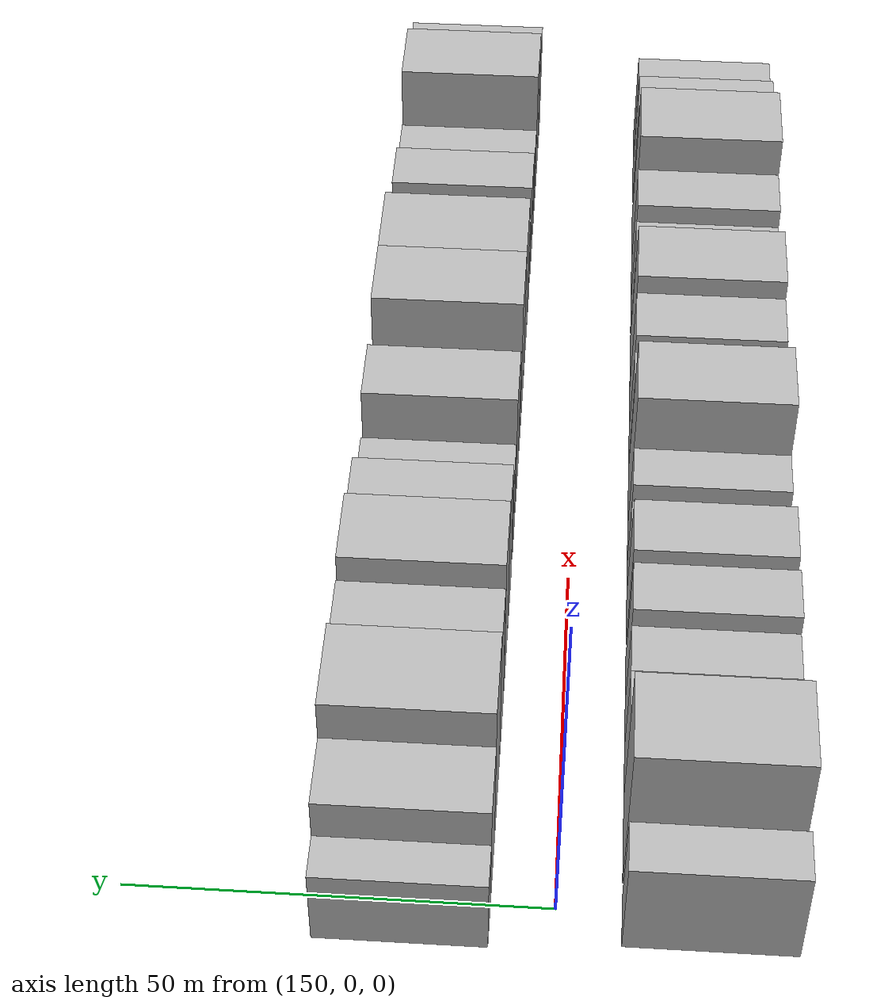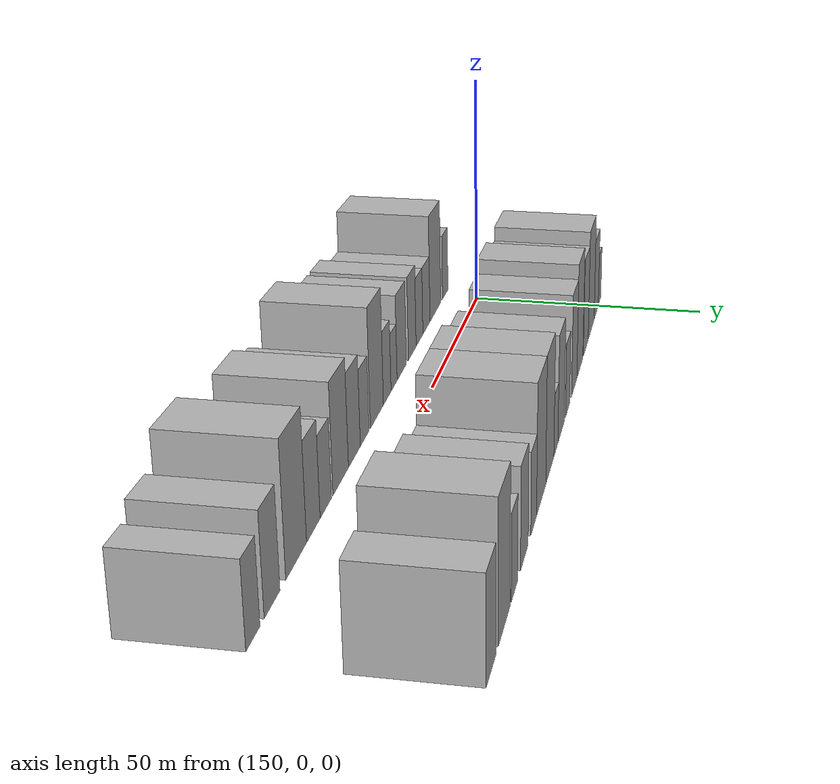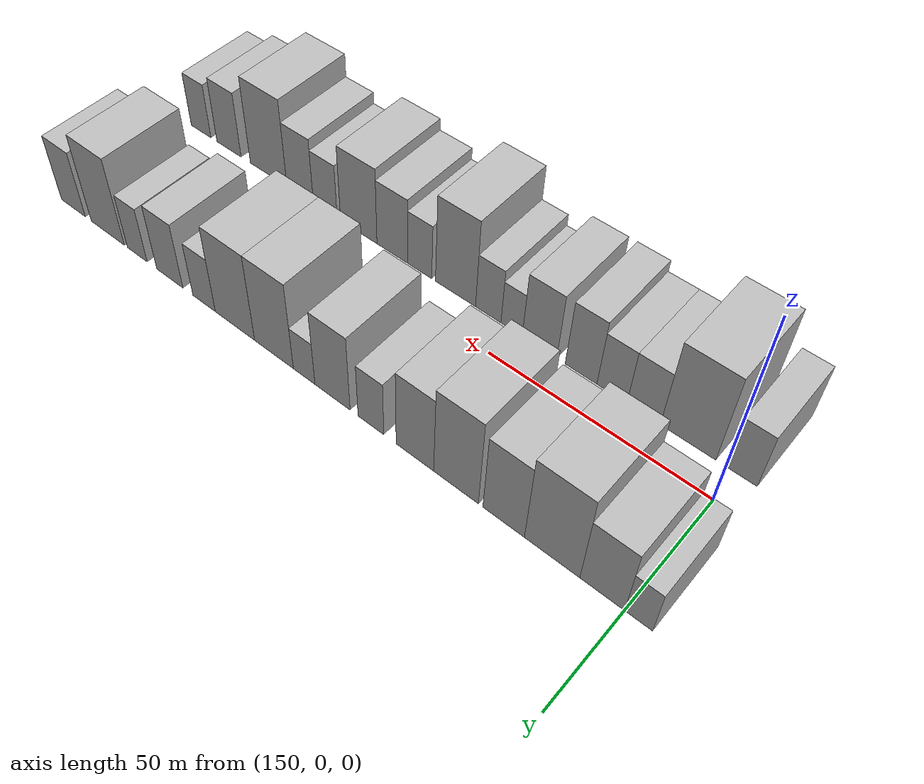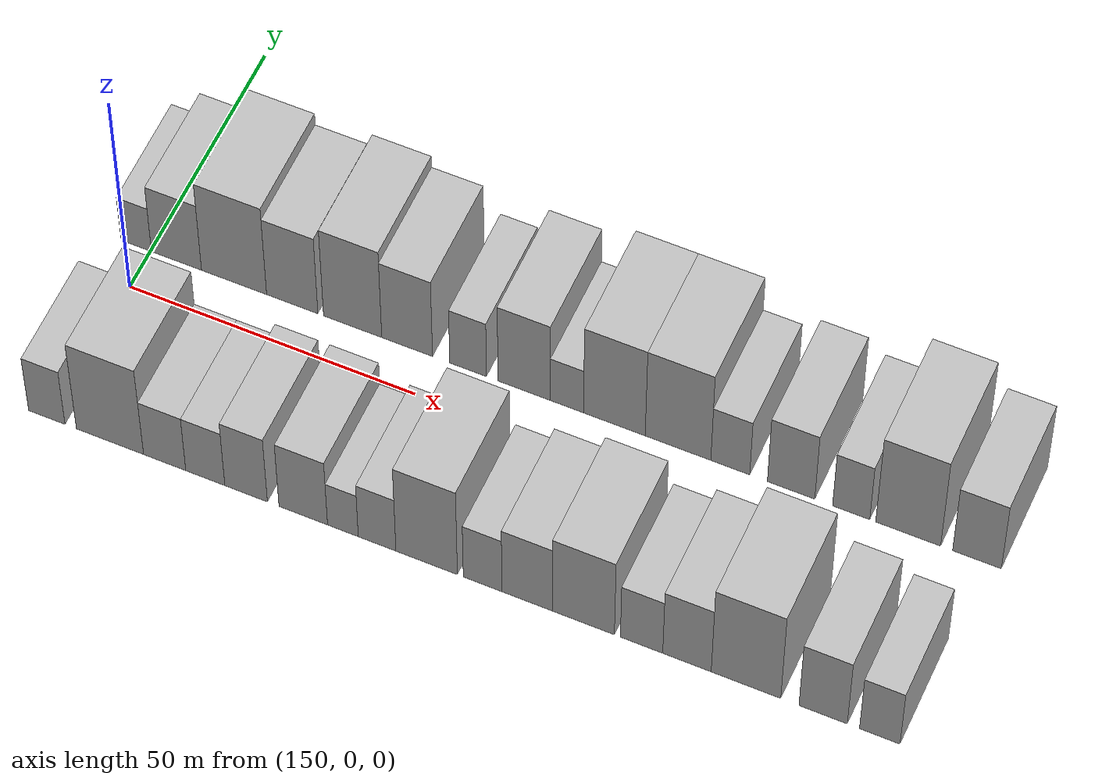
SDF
<sdf version="1.6">
 <world name="default">
  <model name="building_15">
   <static>1</static>
   <pose>147.3118 17.5000 0 0.000000 0.000000 1.570796</pose>
   <link name="link">
    <pose>0 0 6.00 0 0 0</pose>
    <collision name="collision"><geometry><box><size>20.0000 5.4236 12.0000</size></box></geometry></collision>
    <visual name="visual">
     <cast_shadows>0</cast_shadows>
     <geometry><box><size>20.0000 5.4236 12.0000</size></box></geometry>
     <material>
      <script>
       <uri>model://HANNAS_wall/materials/scripts</uri>
       <uri>model://HANNAS_wall/materials/textures</uri>
       <name>vrc/HANNAS_wall</name>
      </script>
     </material>
    </visual>
   </link>
  </model>
  <model name="building_16">
   <static>1</static>
   <pose>154.4905 17.5000 0 0.000000 0.000000 1.570796</pose>
   <link name="link">
    <pose>0 0 9.00 0 0 0</pose>
    <collision name="collision"><geometry><box><size>20.0000 8.9338 18.0000</size></box></geometry></collision>
    <visual name="visual">
     <cast_shadows>0</cast_shadows>
     <geometry><box><size>20.0000 8.9338 18.0000</size></box></geometry>
     <material>
      <script>
       <uri>model://HANNAS_wall/materials/scripts</uri>
       <uri>model://HANNAS_wall/materials/textures</uri>
       <name>vrc/HANNAS_wall</name>
      </script>
     </material>
    </visual>
   </link>
  </model>
  <model name="building_17">
   <static>1</static>
   <pose>164.7405 17.5000 0 0.000000 0.000000 1.570796</pose>
   <link name="link">
    <pose>0 0 12.00 0 0 0</pose>
    <collision name="collision"><geometry><box><size>20.0000 11.5662 24.0000</size></box></geometry></collision>
    <visual name="visual">
     <cast_shadows>0</cast_shadows>
     <geometry><box><size>20.0000 11.5662 24.0000</size></box></geometry>
     <material>
      <script>
       <uri>model://HANNAS_wall/materials/scripts</uri>
       <uri>model://HANNAS_wall/materials/textures</uri>
       <name>vrc/HANNAS_wall</name>
      </script>
     </material>
    </visual>
   </link>
  </model>
  <model name="building_18">
   <static>1</static>
   <pose>175.0531 17.5000 0 0.000000 0.000000 1.570796</pose>
   <link name="link">
    <pose>0 0 10.50 0 0 0</pose>
    <collision name="collision"><geometry><box><size>20.0000 9.0590 21.0000</size></box></geometry></collision>
    <visual name="visual">
     <cast_shadows>0</cast_shadows>
     <geometry><box><size>20.0000 9.0590 21.0000</size></box></geometry>
     <material>
      <script>
       <uri>model://HANNAS_wall/materials/scripts</uri>
       <uri>model://HANNAS_wall/materials/textures</uri>
       <name>vrc/HANNAS_wall</name>
      </script>
     </material>
    </visual>
   </link>
  </model>
  <model name="building_19">
   <static>1</static>
   <pose>185.6934 17.5000 0 0.000000 0.000000 1.570796</pose>
   <link name="link">
    <pose>0 0 12.00 0 0 0</pose>
    <collision name="collision"><geometry><box><size>20.0000 10.2216 24.0000</size></box></geometry></collision>
    <visual name="visual">
     <cast_shadows>0</cast_shadows>
     <geometry><box><size>20.0000 10.2216 24.0000</size></box></geometry>
     <material>
      <script>
       <uri>model://HANNAS_wall/materials/scripts</uri>
       <uri>model://HANNAS_wall/materials/textures</uri>
       <name>vrc/HANNAS_wall</name>
      </script>
     </material>
    </visual>
   </link>
  </model>
  <model name="building_20">
   <static>1</static>
   <pose>195.2485 17.5000 0 0.000000 0.000000 1.570796</pose>
   <link name="link">
    <pose>0 0 10.50 0 0 0</pose>
    <collision name="collision"><geometry><box><size>20.0000 8.8885 21.0000</size></box></geometry></collision>
    <visual name="visual">
     <cast_shadows>0</cast_shadows>
     <geometry><box><size>20.0000 8.8885 21.0000</size></box></geometry>
     <material>
      <script>
       <uri>model://HANNAS_wall/materials/scripts</uri>
       <uri>model://HANNAS_wall/materials/textures</uri>
       <name>vrc/HANNAS_wall</name>
      </script>
     </material>
    </visual>
   </link>
  </model>
  <model name="building_21">
   <static>1</static>
   <pose>205.8795 17.5000 0 0.000000 0.000000 1.570796</pose>
   <link name="link">
    <pose>0 0 7.50 0 0 0</pose>
    <collision name="collision"><geometry><box><size>20.0000 6.3734 15.0000</size></box></geometry></collision>
    <visual name="visual">
     <cast_shadows>0</cast_shadows>
     <geometry><box><size>20.0000 6.3734 15.0000</size></box></geometry>
     <material>
      <script>
       <uri>model://HANNAS_wall/materials/scripts</uri>
       <uri>model://HANNAS_wall/materials/textures</uri>
       <name>vrc/HANNAS_wall</name>
      </script>
     </material>
    </visual>
   </link>
  </model>
  <model name="building_22">
   <static>1</static>
   <pose>215.5824 17.5000 0 0.000000 0.000000 1.570796</pose>
   <link name="link">
    <pose>0 0 10.50 0 0 0</pose>
    <collision name="collision"><geometry><box><size>20.0000 9.0325 21.0000</size></box></geometry></collision>
    <visual name="visual">
     <cast_shadows>0</cast_shadows>
     <geometry><box><size>20.0000 9.0325 21.0000</size></box></geometry>
     <material>
      <script>
       <uri>model://HANNAS_wall/materials/scripts</uri>
       <uri>model://HANNAS_wall/materials/textures</uri>
       <name>vrc/HANNAS_wall</name>
      </script>
     </material>
    </visual>
   </link>
  </model>
  <model name="building_23">
   <static>1</static>
   <pose>222.9593 17.5000 0 0.000000 0.000000 1.570796</pose>
   <link name="link">
    <pose>0 0 6.00 0 0 0</pose>
    <collision name="collision"><geometry><box><size>20.0000 5.7213 12.0000</size></box></geometry></collision>
    <visual name="visual">
     <cast_shadows>0</cast_shadows>
     <geometry><box><size>20.0000 5.7213 12.0000</size></box></geometry>
     <material>
      <script>
       <uri>model://HANNAS_wall/materials/scripts</uri>
       <uri>model://HANNAS_wall/materials/textures</uri>
       <name>vrc/HANNAS_wall</name>
      </script>
     </material>
    </visual>
   </link>
  </model>
  <model name="building_24">
   <static>1</static>
   <pose>231.1125 17.5000 0 0.000000 0.000000 1.570796</pose>
   <link name="link">
    <pose>0 0 12.00 0 0 0</pose>
    <collision name="collision"><geometry><box><size>20.0000 10.5853 24.0000</size></box></geometry></collision>
    <visual name="visual">
     <cast_shadows>0</cast_shadows>
     <geometry><box><size>20.0000 10.5853 24.0000</size></box></geometry>
     <material>
      <script>
       <uri>model://HANNAS_wall/materials/scripts</uri>
       <uri>model://HANNAS_wall/materials/textures</uri>
       <name>vrc/HANNAS_wall</name>
      </script>
     </material>
    </visual>
   </link>
  </model>
  <model name="building_25">
   <static>1</static>
   <pose>242.0030 17.5000 0 0.000000 0.000000 1.570796</pose>
   <link name="link">
    <pose>0 0 12.00 0 0 0</pose>
    <collision name="collision"><geometry><box><size>20.0000 11.1956 24.0000</size></box></geometry></collision>
    <visual name="visual">
     <cast_shadows>0</cast_shadows>
     <geometry><box><size>20.0000 11.1956 24.0000</size></box></geometry>
     <material>
      <script>
       <uri>model://HANNAS_wall/materials/scripts</uri>
       <uri>model://HANNAS_wall/materials/textures</uri>
       <name>vrc/HANNAS_wall</name>
      </script>
     </material>
    </visual>
   </link>
  </model>
  <model name="building_26">
   <static>1</static>
   <pose>250.9000 17.5000 0 0.000000 0.000000 1.570796</pose>
   <link name="link">
    <pose>0 0 7.50 0 0 0</pose>
    <collision name="collision"><geometry><box><size>20.0000 6.5985 15.0000</size></box></geometry></collision>
    <visual name="visual">
     <cast_shadows>0</cast_shadows>
     <geometry><box><size>20.0000 6.5985 15.0000</size></box></geometry>
     <material>
      <script>
       <uri>model://HANNAS_wall/materials/scripts</uri>
       <uri>model://HANNAS_wall/materials/textures</uri>
       <name>vrc/HANNAS_wall</name>
      </script>
     </material>
    </visual>
   </link>
  </model>
  <model name="building_27">
   <static>1</static>
   <pose>261.1940 17.5000 0 0.000000 0.000000 1.570796</pose>
   <link name="link">
    <pose>0 0 9.00 0 0 0</pose>
    <collision name="collision"><geometry><box><size>20.0000 7.9895 18.0000</size></box></geometry></collision>
    <visual name="visual">
     <cast_shadows>0</cast_shadows>
     <geometry><box><size>20.0000 7.9895 18.0000</size></box></geometry>
     <material>
      <script>
       <uri>model://HANNAS_wall/materials/scripts</uri>
       <uri>model://HANNAS_wall/materials/textures</uri>
       <name>vrc/HANNAS_wall</name>
      </script>
     </material>
    </visual>
   </link>
  </model>
  <model name="building_28">
   <static>1</static>
   <pose>271.3050 17.5000 0 0.000000 0.000000 1.570796</pose>
   <link name="link">
    <pose>0 0 7.50 0 0 0</pose>
    <collision name="collision"><geometry><box><size>20.0000 6.2325 15.0000</size></box></geometry></collision>
    <visual name="visual">
     <cast_shadows>0</cast_shadows>
     <geometry><box><size>20.0000 6.2325 15.0000</size></box></geometry>
     <material>
      <script>
       <uri>model://HANNAS_wall/materials/scripts</uri>
       <uri>model://HANNAS_wall/materials/textures</uri>
       <name>vrc/HANNAS_wall</name>
      </script>
     </material>
    </visual>
   </link>
  </model>
  <model name="building_29">
   <static>1</static>
   <pose>280.8376 17.5000 0 0.000000 0.000000 1.570796</pose>
   <link name="link">
    <pose>0 0 12.00 0 0 0</pose>
    <collision name="collision"><geometry><box><size>20.0000 10.8327 24.0000</size></box></geometry></collision>
    <visual name="visual">
     <cast_shadows>0</cast_shadows>
     <geometry><box><size>20.0000 10.8327 24.0000</size></box></geometry>
     <material>
      <script>
       <uri>model://HANNAS_wall/materials/scripts</uri>
       <uri>model://HANNAS_wall/materials/textures</uri>
       <name>vrc/HANNAS_wall</name>
      </script>
     </material>
    </visual>
   </link>
  </model>
  <model name="building_30">
   <static>1</static>
   <pose>292.2937 17.5000 0 0.000000 0.000000 1.570796</pose>
   <link name="link">
    <pose>0 0 9.00 0 0 0</pose>
    <collision name="collision"><geometry><box><size>20.0000 8.0795 18.0000</size></box></geometry></collision>
    <visual name="visual">
     <cast_shadows>0</cast_shadows>
     <geometry><box><size>20.0000 8.0795 18.0000</size></box></geometry>
     <material>
      <script>
       <uri>model://HANNAS_wall/materials/scripts</uri>
       <uri>model://HANNAS_wall/materials/textures</uri>
       <name>vrc/HANNAS_wall</name>
      </script>
     </material>
    </visual>
   </link>
  </model>
  <model name="building_47">
   <static>1</static>
   <pose>148.8772 -17.5000 0 0.000000 0.000000 1.570796</pose>
   <link name="link">
    <pose>0 0 7.50 0 0 0</pose>
    <collision name="collision"><geometry><box><size>20.0000 6.4071 15.0000</size></box></geometry></collision>
    <visual name="visual">
     <cast_shadows>0</cast_shadows>
     <geometry><box><size>20.0000 6.4071 15.0000</size></box></geometry>
     <material>
      <script>
       <uri>model://HANNAS_wall/materials/scripts</uri>
       <uri>model://HANNAS_wall/materials/textures</uri>
       <name>vrc/HANNAS_wall</name>
      </script>
     </material>
    </visual>
   </link>
  </model>
  <model name="building_48">
   <static>1</static>
   <pose>159.9604 -17.5000 0 0.000000 0.000000 1.570796</pose>
   <link name="link">
    <pose>0 0 12.00 0 0 0</pose>
    <collision name="collision"><geometry><box><size>20.0000 11.7594 24.0000</size></box></geometry></collision>
    <visual name="visual">
     <cast_shadows>0</cast_shadows>
     <geometry><box><size>20.0000 11.7594 24.0000</size></box></geometry>
     <material>
      <script>
       <uri>model://HANNAS_wall/materials/scripts</uri>
       <uri>model://HANNAS_wall/materials/textures</uri>
       <name>vrc/HANNAS_wall</name>
      </script>
     </material>
    </visual>
   </link>
  </model>
  <model name="building_49">
   <static>1</static>
   <pose>169.5211 -17.5000 0 0.000000 0.000000 1.570796</pose>
   <link name="link">
    <pose>0 0 7.50 0 0 0</pose>
    <collision name="collision"><geometry><box><size>20.0000 7.3620 15.0000</size></box></geometry></collision>
    <visual name="visual">
     <cast_shadows>0</cast_shadows>
     <geometry><box><size>20.0000 7.3620 15.0000</size></box></geometry>
     <material>
      <script>
       <uri>model://HANNAS_wall/materials/scripts</uri>
       <uri>model://HANNAS_wall/materials/textures</uri>
       <name>vrc/HANNAS_wall</name>
      </script>
     </material>
    </visual>
   </link>
  </model>
  <model name="building_50">
   <static>1</static>
   <pose>176.5949 -17.5000 0 0.000000 0.000000 1.570796</pose>
   <link name="link">
    <pose>0 0 7.50 0 0 0</pose>
    <collision name="collision"><geometry><box><size>20.0000 6.7854 15.0000</size></box></geometry></collision>
    <visual name="visual">
     <cast_shadows>0</cast_shadows>
     <geometry><box><size>20.0000 6.7854 15.0000</size></box></geometry>
     <material>
      <script>
       <uri>model://HANNAS_wall/materials/scripts</uri>
       <uri>model://HANNAS_wall/materials/textures</uri>
       <name>vrc/HANNAS_wall</name>
      </script>
     </material>
    </visual>
   </link>
  </model>
  <model name="building_51">
   <static>1</static>
   <pose>183.6691 -17.5000 0 0.000000 0.000000 1.570796</pose>
   <link name="link">
    <pose>0 0 9.00 0 0 0</pose>
    <collision name="collision"><geometry><box><size>20.0000 7.3631 18.0000</size></box></geometry></collision>
    <visual name="visual">
     <cast_shadows>0</cast_shadows>
     <geometry><box><size>20.0000 7.3631 18.0000</size></box></geometry>
     <material>
      <script>
       <uri>model://HANNAS_wall/materials/scripts</uri>
       <uri>model://HANNAS_wall/materials/textures</uri>
       <name>vrc/HANNAS_wall</name>
      </script>
     </material>
    </visual>
   </link>
  </model>
  <model name="building_52">
   <static>1</static>
   <pose>193.5242 -17.5000 0 0.000000 0.000000 1.570796</pose>
   <link name="link">
    <pose>0 0 9.00 0 0 0</pose>
    <collision name="collision"><geometry><box><size>20.0000 8.3470 18.0000</size></box></geometry></collision>
    <visual name="visual">
     <cast_shadows>0</cast_shadows>
     <geometry><box><size>20.0000 8.3470 18.0000</size></box></geometry>
     <material>
      <script>
       <uri>model://HANNAS_wall/materials/scripts</uri>
       <uri>model://HANNAS_wall/materials/textures</uri>
       <name>vrc/HANNAS_wall</name>
      </script>
     </material>
    </visual>
   </link>
  </model>
  <model name="building_53">
   <static>1</static>
   <pose>200.3309 -17.5000 0 0.000000 0.000000 1.570796</pose>
   <link name="link">
    <pose>0 0 6.00 0 0 0</pose>
    <collision name="collision"><geometry><box><size>20.0000 5.2664 12.0000</size></box></geometry></collision>
    <visual name="visual">
     <cast_shadows>0</cast_shadows>
     <geometry><box><size>20.0000 5.2664 12.0000</size></box></geometry>
     <material>
      <script>
       <uri>model://HANNAS_wall/materials/scripts</uri>
       <uri>model://HANNAS_wall/materials/textures</uri>
       <name>vrc/HANNAS_wall</name>
      </script>
     </material>
    </visual>
   </link>
  </model>
  <model name="building_54">
   <static>1</static>
   <pose>206.1816 -17.5000 0 0.000000 0.000000 1.570796</pose>
   <link name="link">
    <pose>0 0 7.50 0 0 0</pose>
    <collision name="collision"><geometry><box><size>20.0000 6.4350 15.0000</size></box></geometry></collision>
    <visual name="visual">
     <cast_shadows>0</cast_shadows>
     <geometry><box><size>20.0000 6.4350 15.0000</size></box></geometry>
     <material>
      <script>
       <uri>model://HANNAS_wall/materials/scripts</uri>
       <uri>model://HANNAS_wall/materials/textures</uri>
       <name>vrc/HANNAS_wall</name>
      </script>
     </material>
    </visual>
   </link>
  </model>
  <model name="building_55">
   <static>1</static>
   <pose>214.6274 -17.5000 0 0.000000 0.000000 1.570796</pose>
   <link name="link">
    <pose>0 0 12.00 0 0 0</pose>
    <collision name="collision"><geometry><box><size>20.0000 10.4568 24.0000</size></box></geometry></collision>
    <visual name="visual">
     <cast_shadows>0</cast_shadows>
     <geometry><box><size>20.0000 10.4568 24.0000</size></box></geometry>
     <material>
      <script>
       <uri>model://HANNAS_wall/materials/scripts</uri>
       <uri>model://HANNAS_wall/materials/textures</uri>
       <name>vrc/HANNAS_wall</name>
      </script>
     </material>
    </visual>
   </link>
  </model>
  <model name="building_56">
   <static>1</static>
   <pose>224.1201 -17.5000 0 0.000000 0.000000 1.570796</pose>
   <link name="link">
    <pose>0 0 7.50 0 0 0</pose>
    <collision name="collision"><geometry><box><size>20.0000 6.5286 15.0000</size></box></geometry></collision>
    <visual name="visual">
     <cast_shadows>0</cast_shadows>
     <geometry><box><size>20.0000 6.5286 15.0000</size></box></geometry>
     <material>
      <script>
       <uri>model://HANNAS_wall/materials/scripts</uri>
       <uri>model://HANNAS_wall/materials/textures</uri>
       <name>vrc/HANNAS_wall</name>
      </script>
     </material>
    </visual>
   </link>
  </model>
  <model name="building_57">
   <static>1</static>
   <pose>231.6221 -17.5000 0 0.000000 0.000000 1.570796</pose>
   <link name="link">
    <pose>0 0 9.00 0 0 0</pose>
    <collision name="collision"><geometry><box><size>20.0000 8.4753 18.0000</size></box></geometry></collision>
    <visual name="visual">
     <cast_shadows>0</cast_shadows>
     <geometry><box><size>20.0000 8.4753 18.0000</size></box></geometry>
     <material>
      <script>
       <uri>model://HANNAS_wall/materials/scripts</uri>
       <uri>model://HANNAS_wall/materials/textures</uri>
       <name>vrc/HANNAS_wall</name>
      </script>
     </material>
    </visual>
   </link>
  </model>
  <model name="building_58">
   <static>1</static>
   <pose>241.0723 -17.5000 0 0.000000 0.000000 1.570796</pose>
   <link name="link">
    <pose>0 0 10.50 0 0 0</pose>
    <collision name="collision"><geometry><box><size>20.0000 10.4251 21.0000</size></box></geometry></collision>
    <visual name="visual">
     <cast_shadows>0</cast_shadows>
     <geometry><box><size>20.0000 10.4251 21.0000</size></box></geometry>
     <material>
      <script>
       <uri>model://HANNAS_wall/materials/scripts</uri>
       <uri>model://HANNAS_wall/materials/textures</uri>
       <name>vrc/HANNAS_wall</name>
      </script>
     </material>
    </visual>
   </link>
  </model>
  <model name="building_59">
   <static>1</static>
   <pose>250.8143 -17.5000 0 0.000000 0.000000 1.570796</pose>
   <link name="link">
    <pose>0 0 7.50 0 0 0</pose>
    <collision name="collision"><geometry><box><size>20.0000 7.0588 15.0000</size></box></geometry></collision>
    <visual name="visual">
     <cast_shadows>0</cast_shadows>
     <geometry><box><size>20.0000 7.0588 15.0000</size></box></geometry>
     <material>
      <script>
       <uri>model://HANNAS_wall/materials/scripts</uri>
       <uri>model://HANNAS_wall/materials/textures</uri>
       <name>vrc/HANNAS_wall</name>
      </script>
     </material>
    </visual>
   </link>
  </model>
  <model name="building_60">
   <static>1</static>
   <pose>258.3700 -17.5000 0 0.000000 0.000000 1.570796</pose>
   <link name="link">
    <pose>0 0 9.00 0 0 0</pose>
    <collision name="collision"><geometry><box><size>20.0000 8.0526 18.0000</size></box></geometry></collision>
    <visual name="visual">
     <cast_shadows>0</cast_shadows>
     <geometry><box><size>20.0000 8.0526 18.0000</size></box></geometry>
     <material>
      <script>
       <uri>model://HANNAS_wall/materials/scripts</uri>
       <uri>model://HANNAS_wall/materials/textures</uri>
       <name>vrc/HANNAS_wall</name>
      </script>
     </material>
    </visual>
   </link>
  </model>
  <model name="building_61">
   <static>1</static>
   <pose>268.1397 -17.5000 0 0.000000 0.000000 1.570796</pose>
   <link name="link">
    <pose>0 0 12.00 0 0 0</pose>
    <collision name="collision"><geometry><box><size>20.0000 11.4868 24.0000</size></box></geometry></collision>
    <visual name="visual">
     <cast_shadows>0</cast_shadows>
     <geometry><box><size>20.0000 11.4868 24.0000</size></box></geometry>
     <material>
      <script>
       <uri>model://HANNAS_wall/materials/scripts</uri>
       <uri>model://HANNAS_wall/materials/textures</uri>
       <name>vrc/HANNAS_wall</name>
      </script>
     </material>
    </visual>
   </link>
  </model>
  <model name="building_62">
   <static>1</static>
   <pose>280.8443 -17.5000 0 0.000000 0.000000 1.570796</pose>
   <link name="link">
    <pose>0 0 9.00 0 0 0</pose>
    <collision name="collision"><geometry><box><size>20.0000 7.9222 18.0000</size></box></geometry></collision>
    <visual name="visual">
     <cast_shadows>0</cast_shadows>
     <geometry><box><size>20.0000 7.9222 18.0000</size></box></geometry>
     <material>
      <script>
       <uri>model://HANNAS_wall/materials/scripts</uri>
       <uri>model://HANNAS_wall/materials/textures</uri>
       <name>vrc/HANNAS_wall</name>
      </script>
     </material>
    </visual>
   </link>
  </model>
  <model name="building_63">
   <static>1</static>
   <pose>290.1061 -17.5000 0 0.000000 0.000000 1.570796</pose>
   <link name="link">
    <pose>0 0 7.50 0 0 0</pose>
    <collision name="collision"><geometry><box><size>20.0000 6.6015 15.0000</size></box></geometry></collision>
    <visual name="visual">
     <cast_shadows>0</cast_shadows>
     <geometry><box><size>20.0000 6.6015 15.0000</size></box></geometry>
     <material>
      <script>
       <uri>model://HANNAS_wall/materials/scripts</uri>
       <uri>model://HANNAS_wall/materials/textures</uri>
       <name>vrc/HANNAS_wall</name>
      </script>
     </material>
    </visual>
   </link>
  </model>
 </world>
</sdf>
